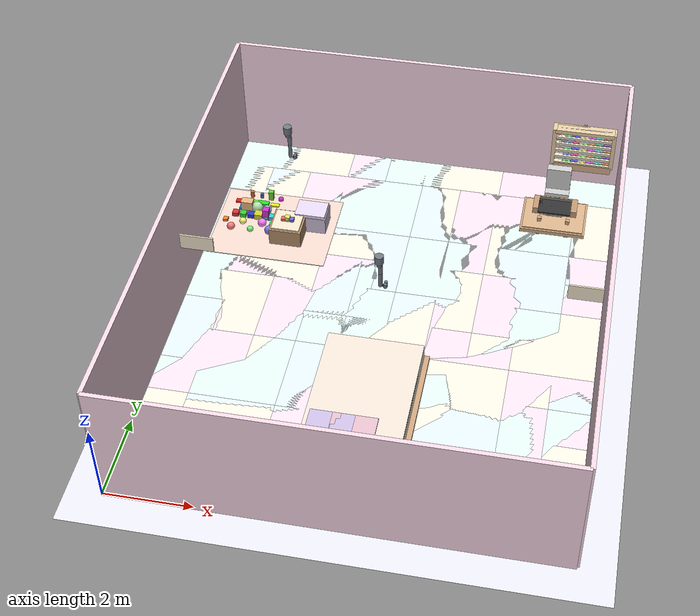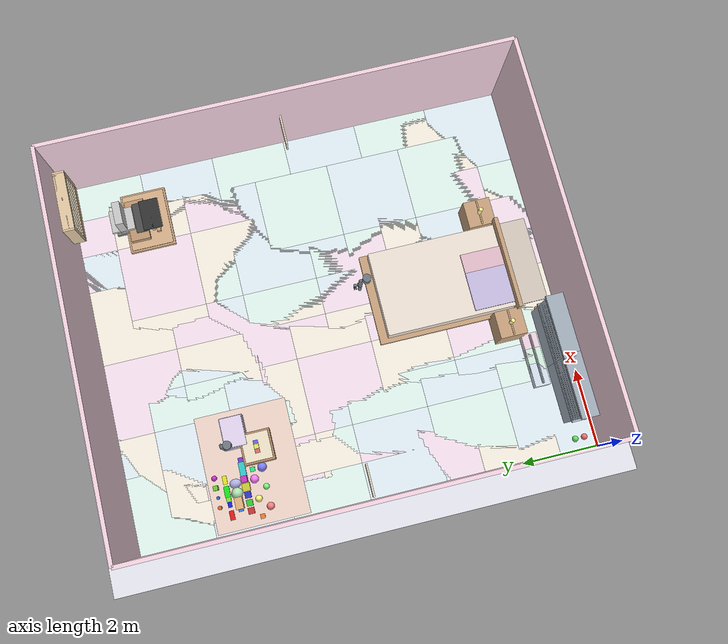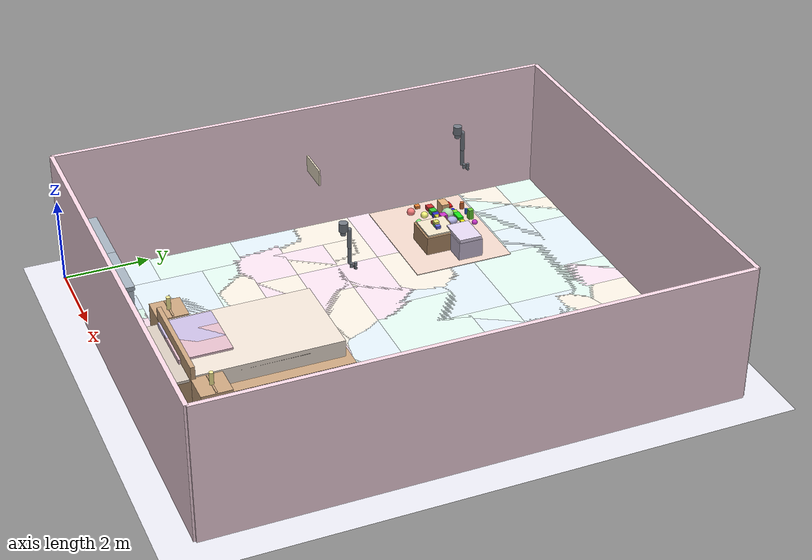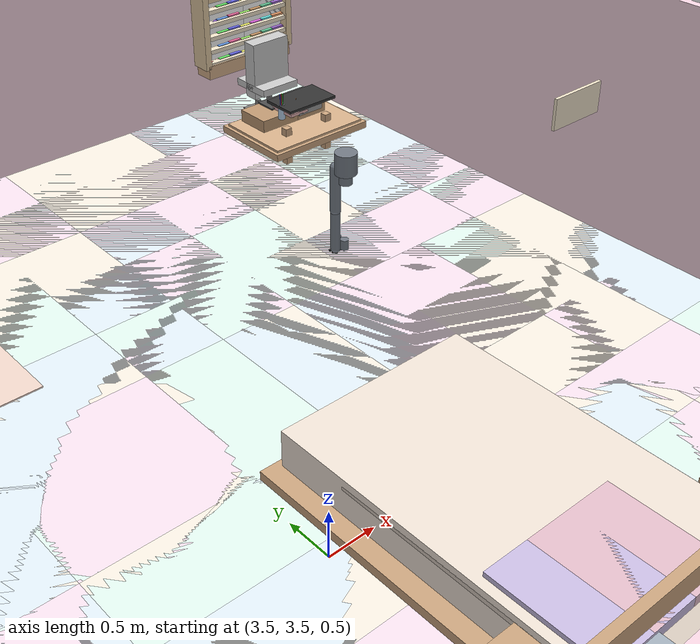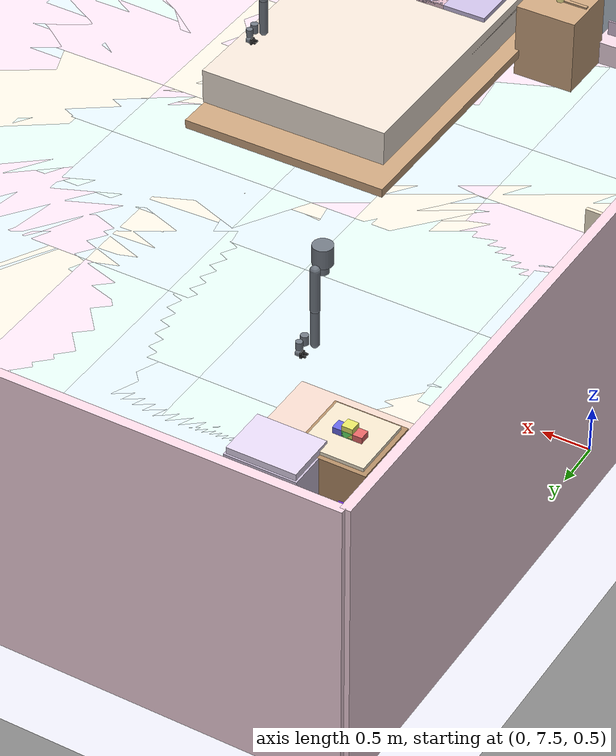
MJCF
<mujoco model="kids_room">
  <compiler angle="degree" inertiafromgeom="true" meshdir="../assets/meshes"/>
  <option gravity="0 0 -9.81" integrator="RK4"/>
  <default>
    <default class="floor"><geom friction="1 0.005 0.0001" rgba="0.92 0.92 0.96 1"/></default>
    <default class="wall"><geom type="box" rgba="0.98 0.85 0.9 1"/></default>
    <default class="ceiling"><geom type="box" rgba="0.93 0.93 0.95 1"/></default>
    <default class="furniture"><geom friction="0.8 0.03 0.001" rgba="0.65 0.65 0.68 1"/></default>
    <default class="wood"><geom friction="0.8 0.03 0.001" rgba="0.95 0.9 0.8 1"/></default>
    <default class="metal"><geom friction="0.9 0.02 0.001" rgba="0.55 0.55 0.6 1"/></default>
    <default class="plastic"><geom friction="0.6 0.02 0.001" rgba="0.7 0.7 0.8 1"/></default>
    <default class="toy"><geom type="sphere" size="0.08" friction="0.6 0.01 0.001" rgba="0.9 0.4 0.4 1"/></default>
    <default class="lamp"><geom rgba="1 1 0.75 1"/></default>
    <default class="arm"><geom rgba="0.45 0.48 0.52 1" friction="0.9 0.02 0.001"/></default>
  </default>
  <worldbody>
    <!-- Warm and soft lighting for children's room -->
    <!-- Ambient light -->
    <light name="ambient_light" pos="5 6 4" dir="0 0 -1" diffuse="0.4 0.4 0.35" specular="0.1 0.1 0.1"/>
    <!-- Main ceiling light -->
    <light name="ceiling_light" pos="5 6 4" dir="0 0 -1" diffuse="0.6 0.55 0.5" specular="0.2 0.2 0.2" castshadow="false"/>
    <!-- Desk lamp -->
    <light name="desk_lamp" type="spot" pos="8.5 9.5 1.2" dir="0 -1 0" diffuse="1.0 0.9 0.8" specular="0.2 0.2 0.2" attenuation="0.5 0.1 0.05"/>
    <body name="room">
      <camera name="top_view" pos="5 8.5 2.5" euler="-45 0 0" mode="fixed"/>
      <geom name="floor_plane" class="floor" type="plane" pos="0 0 0" size="40 40 0.1"/>
      <geom name="floor_visual" class="floor" type="box" pos="5 6 0" size="5 6 0.03" rgba="0.95 0.95 0.97 1"/>
      <!-- Decorative floor pattern - full room coverage -->
      <!-- Row 1 (y=1) -->
      <geom class="floor" type="box" pos="1 1 0.031" size="1 1 0.001" rgba="0.9 0.95 0.98 1"/>
      <geom class="floor" type="box" pos="2 1 0.031" size="1 1 0.001" rgba="0.98 0.9 0.95 1"/>
      <geom class="floor" type="box" pos="3 1 0.031" size="1 1 0.001" rgba="0.9 0.98 0.95 1"/>
      <geom class="floor" type="box" pos="4 1 0.031" size="1 1 0.001" rgba="0.98 0.95 0.9 1"/>
      <geom class="floor" type="box" pos="5 1 0.031" size="1 1 0.001" rgba="0.9 0.95 0.98 1"/>
      <geom class="floor" type="box" pos="6 1 0.031" size="1 1 0.001" rgba="0.98 0.9 0.95 1"/>
      <geom class="floor" type="box" pos="7 1 0.031" size="1 1 0.001" rgba="0.9 0.98 0.95 1"/>
      <geom class="floor" type="box" pos="8 1 0.031" size="1 1 0.001" rgba="0.98 0.95 0.9 1"/>
      <geom class="floor" type="box" pos="9 1 0.031" size="1 1 0.001" rgba="0.9 0.95 0.98 1"/>

      <!-- Row 2 (y=2) -->
      <geom class="floor" type="box" pos="1 2 0.031" size="1 1 0.001" rgba="0.98 0.95 0.9 1"/>
      <geom class="floor" type="box" pos="2 2 0.031" size="1 1 0.001" rgba="0.9 0.95 0.98 1"/>
      <geom class="floor" type="box" pos="3 2 0.031" size="1 1 0.001" rgba="0.98 0.9 0.95 1"/>
      <geom class="floor" type="box" pos="4 2 0.031" size="1 1 0.001" rgba="0.9 0.98 0.95 1"/>
      <geom class="floor" type="box" pos="5 2 0.031" size="1 1 0.001" rgba="0.98 0.95 0.9 1"/>
      <geom class="floor" type="box" pos="6 2 0.031" size="1 1 0.001" rgba="0.9 0.95 0.98 1"/>
      <geom class="floor" type="box" pos="7 2 0.031" size="1 1 0.001" rgba="0.98 0.9 0.95 1"/>
      <geom class="floor" type="box" pos="8 2 0.031" size="1 1 0.001" rgba="0.9 0.98 0.95 1"/>
      <geom class="floor" type="box" pos="9 2 0.031" size="1 1 0.001" rgba="0.98 0.95 0.9 1"/>

      <!-- Row 3 (y=3) -->
      <geom class="floor" type="box" pos="1 3 0.031" size="1 1 0.001" rgba="0.9 0.98 0.95 1"/>
      <geom class="floor" type="box" pos="2 3 0.031" size="1 1 0.001" rgba="0.98 0.95 0.9 1"/>
      <geom class="floor" type="box" pos="3 3 0.031" size="1 1 0.001" rgba="0.9 0.95 0.98 1"/>
      <geom class="floor" type="box" pos="4 3 0.031" size="1 1 0.001" rgba="0.98 0.9 0.95 1"/>
      <geom class="floor" type="box" pos="5 3 0.031" size="1 1 0.001" rgba="0.9 0.98 0.95 1"/>
      <geom class="floor" type="box" pos="6 3 0.031" size="1 1 0.001" rgba="0.98 0.95 0.9 1"/>
      <geom class="floor" type="box" pos="7 3 0.031" size="1 1 0.001" rgba="0.9 0.95 0.98 1"/>
      <geom class="floor" type="box" pos="8 3 0.031" size="1 1 0.001" rgba="0.98 0.9 0.95 1"/>
      <geom class="floor" type="box" pos="9 3 0.031" size="1 1 0.001" rgba="0.9 0.98 0.95 1"/>

      <!-- Row 4 (y=4) -->
      <geom class="floor" type="box" pos="1 4 0.031" size="1 1 0.001" rgba="0.98 0.9 0.95 1"/>
      <geom class="floor" type="box" pos="2 4 0.031" size="1 1 0.001" rgba="0.9 0.98 0.95 1"/>
      <geom class="floor" type="box" pos="3 4 0.031" size="1 1 0.001" rgba="0.98 0.95 0.9 1"/>
      <geom class="floor" type="box" pos="4 4 0.031" size="1 1 0.001" rgba="0.9 0.95 0.98 1"/>
      <geom class="floor" type="box" pos="5 4 0.031" size="1 1 0.001" rgba="0.98 0.9 0.95 1"/>
      <geom class="floor" type="box" pos="6 4 0.031" size="1 1 0.001" rgba="0.9 0.98 0.95 1"/>
      <geom class="floor" type="box" pos="7 4 0.031" size="1 1 0.001" rgba="0.98 0.95 0.9 1"/>
      <geom class="floor" type="box" pos="8 4 0.031" size="1 1 0.001" rgba="0.9 0.95 0.98 1"/>
      <geom class="floor" type="box" pos="9 4 0.031" size="1 1 0.001" rgba="0.98 0.9 0.95 1"/>

      <!-- Row 5 (y=5) -->
      <geom class="floor" type="box" pos="1 5 0.031" size="1 1 0.001" rgba="0.9 0.95 0.98 1"/>
      <geom class="floor" type="box" pos="2 5 0.031" size="1 1 0.001" rgba="0.98 0.9 0.95 1"/>
      <geom class="floor" type="box" pos="3 5 0.031" size="1 1 0.001" rgba="0.9 0.98 0.95 1"/>
      <geom class="floor" type="box" pos="4 5 0.031" size="1 1 0.001" rgba="0.98 0.95 0.9 1"/>
      <geom class="floor" type="box" pos="5 5 0.031" size="1 1 0.001" rgba="0.9 0.95 0.98 1"/>
      <geom class="floor" type="box" pos="6 5 0.031" size="1 1 0.001" rgba="0.98 0.9 0.95 1"/>
      <geom class="floor" type="box" pos="7 5 0.031" size="1 1 0.001" rgba="0.9 0.98 0.95 1"/>
      <geom class="floor" type="box" pos="8 5 0.031" size="1 1 0.001" rgba="0.98 0.95 0.9 1"/>
      <geom class="floor" type="box" pos="9 5 0.031" size="1 1 0.001" rgba="0.9 0.95 0.98 1"/>

      <!-- Row 6 (y=6) -->
      <geom class="floor" type="box" pos="1 6 0.031" size="1 1 0.001" rgba="0.98 0.95 0.9 1"/>
      <geom class="floor" type="box" pos="2 6 0.031" size="1 1 0.001" rgba="0.9 0.95 0.98 1"/>
      <geom class="floor" type="box" pos="3 6 0.031" size="1 1 0.001" rgba="0.98 0.9 0.95 1"/>
      <geom class="floor" type="box" pos="4 6 0.031" size="1 1 0.001" rgba="0.9 0.98 0.95 1"/>
      <geom class="floor" type="box" pos="5 6 0.031" size="1 1 0.001" rgba="0.98 0.95 0.9 1"/>
      <geom class="floor" type="box" pos="6 6 0.031" size="1 1 0.001" rgba="0.9 0.95 0.98 1"/>
      <geom class="floor" type="box" pos="7 6 0.031" size="1 1 0.001" rgba="0.98 0.9 0.95 1"/>
      <geom class="floor" type="box" pos="8 6 0.031" size="1 1 0.001" rgba="0.9 0.98 0.95 1"/>
      <geom class="floor" type="box" pos="9 6 0.031" size="1 1 0.001" rgba="0.98 0.95 0.9 1"/>

      <!-- Row 7 (y=7) -->
      <geom class="floor" type="box" pos="1 7 0.031" size="1 1 0.001" rgba="0.9 0.98 0.95 1"/>
      <geom class="floor" type="box" pos="2 7 0.031" size="1 1 0.001" rgba="0.98 0.95 0.9 1"/>
      <geom class="floor" type="box" pos="3 7 0.031" size="1 1 0.001" rgba="0.9 0.95 0.98 1"/>
      <geom class="floor" type="box" pos="4 7 0.031" size="1 1 0.001" rgba="0.98 0.9 0.95 1"/>
      <geom class="floor" type="box" pos="5 7 0.031" size="1 1 0.001" rgba="0.9 0.98 0.95 1"/>
      <geom class="floor" type="box" pos="6 7 0.031" size="1 1 0.001" rgba="0.98 0.95 0.9 1"/>
      <geom class="floor" type="box" pos="7 7 0.031" size="1 1 0.001" rgba="0.9 0.95 0.98 1"/>
      <geom class="floor" type="box" pos="8 7 0.031" size="1 1 0.001" rgba="0.98 0.9 0.95 1"/>
      <geom class="floor" type="box" pos="9 7 0.031" size="1 1 0.001" rgba="0.9 0.98 0.95 1"/>

      <!-- Row 8 (y=8) -->
      <geom class="floor" type="box" pos="1 8 0.031" size="1 1 0.001" rgba="0.98 0.9 0.95 1"/>
      <geom class="floor" type="box" pos="2 8 0.031" size="1 1 0.001" rgba="0.9 0.98 0.95 1"/>
      <geom class="floor" type="box" pos="3 8 0.031" size="1 1 0.001" rgba="0.98 0.95 0.9 1"/>
      <geom class="floor" type="box" pos="4 8 0.031" size="1 1 0.001" rgba="0.9 0.95 0.98 1"/>
      <geom class="floor" type="box" pos="5 8 0.031" size="1 1 0.001" rgba="0.98 0.9 0.95 1"/>
      <geom class="floor" type="box" pos="6 8 0.031" size="1 1 0.001" rgba="0.9 0.98 0.95 1"/>
      <geom class="floor" type="box" pos="7 8 0.031" size="1 1 0.001" rgba="0.98 0.95 0.9 1"/>
      <geom class="floor" type="box" pos="8 8 0.031" size="1 1 0.001" rgba="0.9 0.95 0.98 1"/>
      <geom class="floor" type="box" pos="9 8 0.031" size="1 1 0.001" rgba="0.98 0.9 0.95 1"/>

      <!-- Row 9 (y=9) -->
      <geom class="floor" type="box" pos="1 9 0.031" size="1 1 0.001" rgba="0.9 0.95 0.98 1"/>
      <geom class="floor" type="box" pos="2 9 0.031" size="1 1 0.001" rgba="0.98 0.9 0.95 1"/>
      <geom class="floor" type="box" pos="3 9 0.031" size="1 1 0.001" rgba="0.9 0.98 0.95 1"/>
      <geom class="floor" type="box" pos="4 9 0.031" size="1 1 0.001" rgba="0.98 0.95 0.9 1"/>
      <geom class="floor" type="box" pos="5 9 0.031" size="1 1 0.001" rgba="0.9 0.95 0.98 1"/>
      <geom class="floor" type="box" pos="6 9 0.031" size="1 1 0.001" rgba="0.98 0.9 0.95 1"/>
      <geom class="floor" type="box" pos="7 9 0.031" size="1 1 0.001" rgba="0.9 0.98 0.95 1"/>
      <geom class="floor" type="box" pos="8 9 0.031" size="1 1 0.001" rgba="0.98 0.95 0.9 1"/>
      <geom class="floor" type="box" pos="9 9 0.031" size="1 1 0.001" rgba="0.9 0.95 0.98 1"/>

      <!-- Row 10 (y=10) -->
      <geom class="floor" type="box" pos="1 10 0.031" size="1 1 0.001" rgba="0.98 0.95 0.9 1"/>
      <geom class="floor" type="box" pos="2 10 0.031" size="1 1 0.001" rgba="0.9 0.95 0.98 1"/>
      <geom class="floor" type="box" pos="3 10 0.031" size="1 1 0.001" rgba="0.98 0.9 0.95 1"/>
      <geom class="floor" type="box" pos="4 10 0.031" size="1 1 0.001" rgba="0.9 0.98 0.95 1"/>
      <geom class="floor" type="box" pos="5 10 0.031" size="1 1 0.001" rgba="0.98 0.95 0.9 1"/>
      <geom class="floor" type="box" pos="6 10 0.031" size="1 1 0.001" rgba="0.9 0.95 0.98 1"/>
      <geom class="floor" type="box" pos="7 10 0.031" size="1 1 0.001" rgba="0.98 0.9 0.95 1"/>
      <geom class="floor" type="box" pos="8 10 0.031" size="1 1 0.001" rgba="0.9 0.98 0.95 1"/>
      <geom class="floor" type="box" pos="9 10 0.031" size="1 1 0.001" rgba="0.98 0.95 0.9 1"/>

      <!-- Row 11 (y=11) -->
      <geom class="floor" type="box" pos="1 11 0.031" size="1 1 0.001" rgba="0.9 0.98 0.95 1"/>
      <geom class="floor" type="box" pos="2 11 0.031" size="1 1 0.001" rgba="0.98 0.95 0.9 1"/>
      <geom class="floor" type="box" pos="3 11 0.031" size="1 1 0.001" rgba="0.9 0.95 0.98 1"/>
      <geom class="floor" type="box" pos="4 11 0.031" size="1 1 0.001" rgba="0.98 0.9 0.95 1"/>
      <geom class="floor" type="box" pos="5 11 0.031" size="1 1 0.001" rgba="0.9 0.98 0.95 1"/>
      <geom class="floor" type="box" pos="6 11 0.031" size="1 1 0.001" rgba="0.98 0.95 0.9 1"/>
      <geom class="floor" type="box" pos="7 11 0.031" size="1 1 0.001" rgba="0.9 0.95 0.98 1"/>
      <geom class="floor" type="box" pos="8 11 0.031" size="1 1 0.001" rgba="0.98 0.9 0.95 1"/>
      <geom class="floor" type="box" pos="9 11 0.031" size="1 1 0.001" rgba="0.9 0.98 0.95 1"/>
      <geom name="north_wall" class="wall" pos="5 0 1.6" size="5 0.05 1.6" rgba="0.98 0.85 0.9 1"/>
      <geom name="south_wall" class="wall" pos="5 12 1.6" size="5 0.05 1.6" rgba="0.98 0.85 0.9 1"/>
      <geom name="west_wall" class="wall" pos="0 6 1.6" size="0.05 6 1.6" rgba="0.98 0.85 0.9 1"/>
      <geom name="east_wall" class="wall" pos="10 6 1.6" size="0.05 6 1.6" rgba="0.98 0.85 0.9 1"/>
      <!-- Windows -->
      <geom name="north_window" type="box" pos="5 0 2.0" size="1.5 0.02 0.8" rgba="0.3 0.6 0.9 0.6"/>
      <geom name="north_window_frame1" class="metal" type="box" pos="4.25 0 2.0" size="0.02 0.03 0.85"/>
      <geom name="north_window_frame2" class="metal" type="box" pos="5.75 0 2.0" size="0.02 0.03 0.85"/>
      <geom name="north_window_frame3" class="metal" type="box" pos="5 0 1.6" size="1.55 0.03 0.02"/>
      <geom name="north_window_frame4" class="metal" type="box" pos="5 0 2.4" size="1.55 0.03 0.02"/>
      <!-- Wall decorations -->
      <geom name="painting1" type="box" pos="3 0 2.2" size="0.6 0.01 0.4" rgba="0.9 0.7 0.5 1"/>
      <geom name="painting2" type="box" pos="7 0 2.2" size="0.6 0.01 0.4" rgba="0.5 0.7 0.9 1"/>
      <geom name="painting3" type="box" pos="3 12 2.2" size="0.6 0.01 0.4" rgba="0.7 0.9 0.5 1"/>
      <geom name="painting4" type="box" pos="7 12 2.2" size="0.6 0.01 0.4" rgba="0.9 0.5 0.9 1"/>
      <geom name="shelf1" class="wood" type="box" pos="3 12 1.8" size="0.4 0.02 0.2"/>
      <geom name="shelf2" class="wood" type="box" pos="7 12 1.8" size="0.4 0.02 0.2"/>
      <geom name="shelf3" class="wood" type="box" pos="0.5 6 1.8" size="0.4 0.02 0.2"/>
      <geom name="shelf4" class="wood" type="box" pos="9.5 6 1.8" size="0.4 0.02 0.2"/>
    </body>
    <body name="rest_area">
      <!-- Redesigned rest area with new bed and furniture layout -->
      <!-- Update rug to match new layout -->
      <geom name="rest_rug" type="box" pos="5 4 0.01" size="2.5 3 0.01" rgba="0.85 0.92 0.98 1"/>

      <!-- New bed from warehouse: Modern bed with mattress and pillows -->
      <body name="bed" pos="5 3 0.3" euler="0 0 0">
        <!-- Bed frame -->
        <geom class="wood" type="box" size="1.2 1.8 0.05" pos="0 0 0" rgba="0.8 0.65 0.5 1"/>
        <!-- Headboard -->
        <geom class="wood" type="box" size="1.2 0.05 0.6" pos="0 -1.8 0.3" rgba="0.8 0.65 0.5 1"/>
        <!-- Mattress -->
        <geom type="box" size="1.1 1.7 0.2" pos="0 -0.1 0.4" rgba="0.95 0.9 0.85 1"/>
        <!-- Pillows -->
        <geom type="box" size="0.5 0.6 0.1" pos="0 -1.3 0.55" rgba="0.9 0.75 0.8 1"/>
        <geom type="box" size="0.5 0.6 0.1" pos="-0.5 -1.3 0.55" rgba="0.8 0.75 0.9 1"/>
        <!-- Blanket -->
        <geom type="box" size="1.1 1.7 0.03" pos="0 -0.9 0.51" rgba="0.85 0.8 0.75 1"/>
      </body>

      <!-- New bedside cabinets from warehouse -->
      <body name="bedside_cabinet_left" pos="3.5 1.5 0.3">
        <geom class="wood" type="box" size="0.35 0.35 0.6" rgba="0.8 0.65 0.5 1"/>
        <!-- Drawers -->
        <geom class="wood" type="box" size="0.3 0.3 0.15" pos="0 0 0.175" rgba="0.75 0.6 0.45 1"/>
        <geom class="wood" type="box" size="0.3 0.3 0.15" pos="0 0 0.425" rgba="0.75 0.6 0.45 1"/>
        <geom class="wood" type="box" size="0.32 0.02 0.32" pos="0 0 0.3" rgba="0.8 0.65 0.5 1"/>
        <!-- Drawer handles -->
        <geom class="metal" type="cylinder" size="0.015 0.05" pos="0.15 0 0.175" rgba="0.7 0.7 0.75 1"/>
        <geom class="metal" type="cylinder" size="0.015 0.05" pos="0.15 0 0.425" rgba="0.7 0.7 0.75 1"/>
        <!-- Lamp on cabinet -->
        <geom class="lamp" type="cylinder" size="0.05 0.25" pos="0 0 0.65" rgba="1 0.95 0.6 1"/>
      </body>

      <body name="bedside_cabinet_right" pos="6.5 1.5 0.3">
        <geom class="wood" type="box" size="0.35 0.35 0.6" rgba="0.8 0.65 0.5 1"/>
        <!-- Drawers -->
        <geom class="wood" type="box" size="0.3 0.3 0.15" pos="0 0 0.175" rgba="0.75 0.6 0.45 1"/>
        <geom class="wood" type="box" size="0.3 0.3 0.15" pos="0 0 0.425" rgba="0.75 0.6 0.45 1"/>
        <geom class="wood" type="box" size="0.32 0.02 0.32" pos="0 0 0.3" rgba="0.8 0.65 0.5 1"/>
        <!-- Drawer handles -->
        <geom class="metal" type="cylinder" size="0.015 0.05" pos="0.15 0 0.175" rgba="0.7 0.7 0.75 1"/>
        <geom class="metal" type="cylinder" size="0.015 0.05" pos="0.15 0 0.425" rgba="0.7 0.7 0.75 1"/>
        <!-- Lamp on cabinet -->
        <geom class="lamp" type="cylinder" size="0.05 0.25" pos="0 0 0.65" rgba="1 0.95 0.6 1"/>
      </body>

    </body>

    <body name="study_area">
      <geom name="study_floor" type="box" pos="8.5 10 0.01" size="1.5 2 0.01" rgba="0.9 0.96 0.9 1"/>
      <!-- New desk from warehouse: Modern wooden desk -->
      <body name="desk" pos="8.5 10 0.375" euler="0 0 0">
        <geom class="wood" type="box" size="0.8 0.6 0.05" pos="0 0 0" rgba="0.8 0.65 0.5 1"/>
        <!-- Desk top -->
        <geom class="wood" type="box" size="0.75 0.55 0.02" pos="0 0 0.06" rgba="0.85 0.7 0.55 1"/>
        <!-- Desk legs -->
        <geom class="wood" type="box" size="0.05 0.05 0.375" pos="0.35 0.25 -0.1875" rgba="0.8 0.65 0.5 1"/>
        <geom class="wood" type="box" size="0.05 0.05 0.375" pos="-0.35 0.25 -0.1875" rgba="0.8 0.65 0.5 1"/>
        <geom class="wood" type="box" size="0.05 0.05 0.375" pos="0.35 -0.25 -0.1875" rgba="0.8 0.65 0.5 1"/>
        <geom class="wood" type="box" size="0.05 0.05 0.375" pos="-0.35 -0.25 -0.1875" rgba="0.8 0.65 0.5 1"/>
        <!-- Drawers -->
        <geom class="wood" type="box" size="0.3 0.25 0.15" pos="-0.25 0.25 0.1" rgba="0.75 0.6 0.45 1"/>
        <geom class="wood" type="box" size="0.3 0.25 0.15" pos="0.25 0.25 0.1" rgba="0.75 0.6 0.45 1"/>
        <!-- Drawer handles -->
        <geom class="metal" type="cylinder" size="0.015 0.05" pos="-0.1 0.25 0.1" rgba="0.7 0.7 0.75 1"/>
        <geom class="metal" type="cylinder" size="0.015 0.05" pos="0.1 0.25 0.1" rgba="0.7 0.7 0.75 1"/>
        <!-- Monitor stand -->
        <geom class="plastic" type="box" size="0.2 0.2 0.05" pos="0 -0.15 0.4" rgba="0.6 0.6 0.6 1"/>
        <!-- Monitor -->
        <geom class="plastic" type="box" size="0.4 0.25 0.02" pos="0 -0.15 0.47" rgba="0.2 0.2 0.2 1"/>
        <!-- Keyboard -->
        <geom class="plastic" type="box" size="0.4 0.15 0.01" pos="0 0.15 0.38" rgba="0.3 0.3 0.3 1"/>
        <!-- Mouse -->
        <geom class="plastic" type="box" size="0.1 0.05 0.01" pos="0.25 0.05 0.38" rgba="0.3 0.3 0.3 1"/>

        <!-- Desk文具 from warehouse -->
        <!-- Pen holder with pens -->
        <geom class="plastic" type="cylinder" size="0.05 0.1" pos="-0.35 -0.15 0.39" rgba="0.7 0.8 0.9 1"/>
        <geom class="plastic" type="cylinder" size="0.008 0.15" pos="-0.35 -0.15 0.5" rgba="0.9 0.3 0.3 1"/>
        <geom class="plastic" type="cylinder" size="0.008 0.15" pos="-0.33 -0.15 0.5" rgba="0.3 0.9 0.3 1"/>
        <geom class="plastic" type="cylinder" size="0.008 0.15" pos="-0.37 -0.15 0.5" rgba="0.3 0.3 0.9 1"/>
        <!-- Notebook -->
        <geom class="plastic" type="box" size="0.15 0.2 0.02" pos="-0.2 -0.15 0.39" rgba="0.9 0.7 0.7 1"/>
        <!-- Pencil -->
        <geom class="plastic" type="cylinder" size="0.006 0.12" pos="-0.1 -0.15 0.39" rgba="0.7 0.4 0.2 1"/>
        <!-- Eraser -->
        <geom class="plastic" type="box" size="0.03 0.02 0.01" pos="-0.05 -0.15 0.39" rgba="0.9 0.9 0 1"/>
        <!-- Stapler -->
        <geom class="plastic" type="box" size="0.05 0.02 0.08" pos="0.3 -0.15 0.39" rgba="0.8 0.3 0.3 1"/>
      </body>

      <!-- New chair from warehouse: Ergonomic office chair -->
      <body name="desk_chair" pos="8.5 10.6 0.4">
        <geom class="plastic" type="box" size="0.25 0.25 0.05" pos="0 0 0" rgba="0.5 0.5 0.5 1"/>
        <!-- Chair seat -->
        <geom class="plastic" type="box" size="0.3 0.3 0.05" pos="0 0 0.45" rgba="0.8 0.8 0.8 1"/>
        <!-- Chair back -->
        <geom class="plastic" type="box" size="0.3 0.1 0.4" pos="0 0 0.7" rgba="0.8 0.8 0.8 1"/>
        <!-- Chair legs -->
        <geom class="plastic" type="box" size="0.03 0.03 0.35" pos="0.1 0.1 -0.175" rgba="0.5 0.5 0.5 1"/>
        <geom class="plastic" type="box" size="0.03 0.03 0.35" pos="-0.1 0.1 -0.175" rgba="0.5 0.5 0.5 1"/>
        <geom class="plastic" type="box" size="0.03 0.03 0.35" pos="0.1 -0.1 -0.175" rgba="0.5 0.5 0.5 1"/>
        <geom class="plastic" type="box" size="0.03 0.03 0.35" pos="-0.1 -0.1 -0.175" rgba="0.5 0.5 0.5 1"/>
      </body>

      <!-- Children's room bookshelf with glass doors -->
      <body name="bookshelf" pos="9.0 11.8 0.6">
        <!-- Main structure: width 150cm, height 120cm, depth 30cm -->
        <!-- Bottom base (10cm height) -->
        <geom class="wood" type="box" size="0.75 0.15 0.1" pos="0 0 0.1" rgba="0.85 0.7 0.55 1" mass="5"/>

        <!-- Left side panel -->
        <geom class="wood" type="box" size="0.05 0.15 0.55" pos="-0.75 0 0.7" rgba="0.9 0.8 0.65 1" mass="5"/>
        <!-- Right side panel -->
        <geom class="wood" type="box" size="0.05 0.15 0.55" pos="0.75 0 0.7" rgba="0.9 0.8 0.65 1" mass="5"/>
        <!-- Top panel -->
        <geom class="wood" type="box" size="0.75 0.15 0.05" pos="0 0 1.2" rgba="0.9 0.8 0.65 1" mass="3"/>
        <!-- Back panel -->
        <geom class="wood" type="box" size="0.75 0.05 0.55" pos="0 0.15 0.7" rgba="0.85 0.75 0.6 1" mass="2"/>

        <!-- 5 horizontal shelves with equal spacing (120cm height / 6 sections = 20cm per section) -->
        <!-- Shelf 1 -->
        <geom class="wood" type="box" size="0.7 0.13 0.03" pos="0 0 0.2" rgba="0.95 0.9 0.8 1" mass="2"/>
        <!-- Shelf 2 -->
        <geom class="wood" type="box" size="0.7 0.13 0.03" pos="0 0 0.4" rgba="0.95 0.9 0.8 1" mass="2"/>
        <!-- Shelf 3 -->
        <geom class="wood" type="box" size="0.7 0.13 0.03" pos="0 0 0.6" rgba="0.95 0.9 0.8 1" mass="2"/>
        <!-- Shelf 4 -->
        <geom class="wood" type="box" size="0.7 0.13 0.03" pos="0 0 0.8" rgba="0.95 0.9 0.8 1" mass="2"/>
        <!-- Shelf 5 -->
        <geom class="wood" type="box" size="0.7 0.13 0.03" pos="0 0 1.0" rgba="0.95 0.9 0.8 1" mass="2"/>

        <!-- Left glass door -->
        <body name="left_door" pos="-0.375 0 0.7">
          <joint name="left_door_joint" type="hinge" axis="0 0 1" range="0 90" damping="0.5"/>
          <!-- Door frame -->
          <geom class="wood" type="box" size="0.375 0.02 0.55" pos="0 0 0" rgba="1 1 1 1" mass="1"/>
          <!-- Glass panel -->
          <geom type="box" size="0.35 0.01 0.53" pos="0 -0.01 0" rgba="0.8 0.9 1 0.3" mass="0.5"/>
          <!-- Door handle -->
          <geom class="metal" type="cylinder" size="0.01 0.02" pos="0.35 -0.02 0.7" rgba="0.7 0.7 0.7 1" mass="0.1"/>
        </body>

        <!-- Right glass door -->
        <body name="right_door" pos="0.375 0 0.7">
          <joint name="right_door_joint" type="hinge" axis="0 0 1" range="-90 0" damping="0.5"/>
          <!-- Door frame -->
          <geom class="wood" type="box" size="0.375 0.02 0.55" pos="0 0 0" rgba="1 1 1 1" mass="1"/>
          <!-- Glass panel -->
          <geom type="box" size="0.35 0.01 0.53" pos="0 -0.01 0" rgba="0.8 0.9 1 0.3" mass="0.5"/>
          <!-- Door handle -->
          <geom class="metal" type="cylinder" size="0.01 0.02" pos="-0.35 -0.02 0.7" rgba="0.7 0.7 0.7 1" mass="0.1"/>
        </body>

        <!-- Books on shelves (realistic sizes: 20cm x 15cm x 2-5cm) -->
        <!-- Shelf 1 books -->
        <geom class="plastic" name="book1" type="box" size="0.1 0.075 0.02" pos="-0.6 0 0.21" rgba="0.9 0.4 0.4 1" mass="0.2"/>
        <geom class="plastic" name="book2" type="box" size="0.1 0.075 0.03" pos="-0.4 0 0.21" rgba="0.4 0.9 0.4 1" mass="0.3"/>
        <geom class="plastic" name="book3" type="box" size="0.1 0.075 0.04" pos="-0.2 0 0.21" rgba="0.4 0.4 0.9 1" mass="0.4"/>
        <geom class="plastic" name="book4" type="box" size="0.1 0.075 0.025" pos="0 0 0.21" rgba="0.9 0.9 0.4 1" mass="0.25"/>
        <geom class="plastic" name="book5" type="box" size="0.1 0.075 0.035" pos="0.2 0 0.21" rgba="0.9 0.4 0.9 1" mass="0.35"/>
        <geom class="plastic" name="book6" type="box" size="0.1 0.075 0.045" pos="0.4 0 0.21" rgba="0.4 0.9 0.9 1" mass="0.45"/>
        <geom class="plastic" name="book7" type="box" size="0.1 0.075 0.05" pos="0.6 0 0.21" rgba="0.9 0.6 0.4 1" mass="0.5"/>

        <!-- Shelf 2 books -->
        <geom class="plastic" name="book8" type="box" size="0.1 0.075 0.02" pos="-0.6 0 0.41" rgba="0.6 0.4 0.9 1" mass="0.2"/>
        <geom class="plastic" name="book9" type="box" size="0.1 0.075 0.03" pos="-0.4 0 0.41" rgba="0.4 0.6 0.9 1" mass="0.3"/>
        <geom class="plastic" name="book10" type="box" size="0.1 0.075 0.04" pos="-0.2 0 0.41" rgba="0.9 0.4 0.6 1" mass="0.4"/>
        <geom class="plastic" name="book11" type="box" size="0.1 0.075 0.025" pos="0 0 0.41" rgba="0.6 0.9 0.4 1" mass="0.25"/>
        <geom class="plastic" name="book12" type="box" size="0.1 0.075 0.035" pos="0.2 0 0.41" rgba="0.8 0.6 0.4 1" mass="0.35"/>
        <geom class="plastic" name="book13" type="box" size="0.1 0.075 0.045" pos="0.4 0 0.41" rgba="0.4 0.8 0.6 1" mass="0.45"/>
        <geom class="plastic" name="book14" type="box" size="0.1 0.075 0.05" pos="0.6 0 0.41" rgba="0.6 0.4 0.8 1" mass="0.5"/>

        <!-- Shelf 3 books -->
        <geom class="plastic" name="book15" type="box" size="0.1 0.075 0.02" pos="-0.6 0 0.61" rgba="0.9 0.4 0.4 1" mass="0.2"/>
        <geom class="plastic" name="book16" type="box" size="0.1 0.075 0.03" pos="-0.4 0 0.61" rgba="0.4 0.9 0.4 1" mass="0.3"/>
        <geom class="plastic" name="book17" type="box" size="0.1 0.075 0.04" pos="-0.2 0 0.61" rgba="0.4 0.4 0.9 1" mass="0.4"/>
        <geom class="plastic" name="book18" type="box" size="0.1 0.075 0.025" pos="0 0 0.61" rgba="0.9 0.9 0.4 1" mass="0.25"/>
        <geom class="plastic" name="book19" type="box" size="0.1 0.075 0.035" pos="0.2 0 0.61" rgba="0.9 0.4 0.9 1" mass="0.35"/>
        <geom class="plastic" name="book20" type="box" size="0.1 0.075 0.045" pos="0.4 0 0.61" rgba="0.4 0.9 0.9 1" mass="0.45"/>
        <geom class="plastic" name="book21" type="box" size="0.1 0.075 0.05" pos="0.6 0 0.61" rgba="0.9 0.6 0.4 1" mass="0.5"/>

        <!-- Shelf 4 books -->
        <geom class="plastic" name="book22" type="box" size="0.1 0.075 0.02" pos="-0.6 0 0.81" rgba="0.6 0.4 0.9 1" mass="0.2"/>
        <geom class="plastic" name="book23" type="box" size="0.1 0.075 0.03" pos="-0.4 0 0.81" rgba="0.4 0.6 0.9 1" mass="0.3"/>
        <geom class="plastic" name="book24" type="box" size="0.1 0.075 0.04" pos="-0.2 0 0.81" rgba="0.9 0.4 0.6 1" mass="0.4"/>
        <geom class="plastic" name="book25" type="box" size="0.1 0.075 0.025" pos="0 0 0.81" rgba="0.6 0.9 0.4 1" mass="0.25"/>
        <geom class="plastic" name="book26" type="box" size="0.1 0.075 0.035" pos="0.2 0 0.81" rgba="0.8 0.6 0.4 1" mass="0.35"/>
        <geom class="plastic" name="book27" type="box" size="0.1 0.075 0.045" pos="0.4 0 0.81" rgba="0.4 0.8 0.6 1" mass="0.45"/>
        <geom class="plastic" name="book28" type="box" size="0.1 0.075 0.05" pos="0.6 0 0.81" rgba="0.6 0.4 0.8 1" mass="0.5"/>

        <!-- Shelf 5 books -->
        <geom class="plastic" name="book29" type="box" size="0.1 0.075 0.02" pos="-0.6 0 1.01" rgba="0.9 0.4 0.4 1" mass="0.2"/>
        <geom class="plastic" name="book30" type="box" size="0.1 0.075 0.03" pos="-0.4 0 1.01" rgba="0.4 0.9 0.4 1" mass="0.3"/>
        <geom class="plastic" name="book31" type="box" size="0.1 0.075 0.04" pos="-0.2 0 1.01" rgba="0.4 0.4 0.9 1" mass="0.4"/>
        <geom class="plastic" name="book32" type="box" size="0.1 0.075 0.025" pos="0 0 1.01" rgba="0.9 0.9 0.4 1" mass="0.25"/>
        <geom class="plastic" name="book33" type="box" size="0.1 0.075 0.035" pos="0.2 0 1.01" rgba="0.9 0.4 0.9 1" mass="0.35"/>
        <geom class="plastic" name="book34" type="box" size="0.1 0.075 0.045" pos="0.4 0 1.01" rgba="0.4 0.9 0.9 1" mass="0.45"/>
        <geom class="plastic" name="book35" type="box" size="0.1 0.075 0.05" pos="0.6 0 1.01" rgba="0.9 0.6 0.4 1" mass="0.5"/>
      </body>
    </body>

    <body name="storage_area">
      <geom name="storage_floor" type="box" pos="2 1.5 0.01" size="2 1.5 0.01" rgba="0.96 0.94 0.9 1"/>

      <body name="toy_rack_1" pos="1.5 0.5 0.9">
        <geom class="metal" type="box" size="0.75 0.2 0.9" rgba="0.7 0.75 0.8 1"/>
        <!-- Enhanced frame -->
        <geom class="metal" type="box" size="0.8 0.22 0.05" pos="0 0 0" rgba="0.65 0.7 0.75 1"/>
        <geom class="metal" type="box" size="0.8 0.22 0.05" pos="0 0 0.9" rgba="0.65 0.7 0.75 1"/>
        <!-- Additional shelves -->
        <geom class="plastic" type="box" size="0.7 0.18 0.15" pos="0 0 0.15" rgba="0.8 0.9 0.8 0.8"/>
        <geom class="plastic" type="box" size="0.7 0.18 0.15" pos="0 0 0.35" rgba="0.9 0.8 0.8 0.8"/>
        <geom class="plastic" type="box" size="0.7 0.18 0.15" pos="0 0 0.55" rgba="0.8 0.8 0.9 0.8"/>
        <geom class="plastic" type="box" size="0.7 0.18 0.15" pos="0 0 0.75" rgba="0.9 0.9 0.8 0.8"/>
        <!-- Decorative edges -->
        <geom class="metal" type="box" size="0.72 0.2 0.01" pos="0 0 0.15" rgba="0.6 0.65 0.7 1"/>
        <geom class="metal" type="box" size="0.72 0.2 0.01" pos="0 0 0.35" rgba="0.6 0.65 0.7 1"/>
        <geom class="metal" type="box" size="0.72 0.2 0.01" pos="0 0 0.55" rgba="0.6 0.65 0.7 1"/>
        <geom class="metal" type="box" size="0.72 0.2 0.01" pos="0 0 0.75" rgba="0.6 0.65 0.7 1"/>
        <!-- Decorative corner caps -->
        <geom class="plastic" type="sphere" size="0.03" pos="-0.38 0.11 0" rgba="0.9 0.4 0.4 1"/>
        <geom class="plastic" type="sphere" size="0.03" pos="0.38 0.11 0" rgba="0.9 0.4 0.4 1"/>
        <geom class="plastic" type="sphere" size="0.03" pos="-0.38 -0.11 0" rgba="0.9 0.4 0.4 1"/>
        <geom class="plastic" type="sphere" size="0.03" pos="0.38 -0.11 0" rgba="0.9 0.4 0.4 1"/>
      </body>
      <body name="toy_rack_2" pos="3.0 0.5 0.9">
        <geom class="metal" type="box" size="0.75 0.2 0.9" rgba="0.7 0.75 0.8 1"/>
        <!-- Enhanced frame -->
        <geom class="metal" type="box" size="0.8 0.22 0.05" pos="0 0 0" rgba="0.65 0.7 0.75 1"/>
        <geom class="metal" type="box" size="0.8 0.22 0.05" pos="0 0 0.9" rgba="0.65 0.7 0.75 1"/>
        <!-- Additional shelves -->
        <geom class="plastic" type="box" size="0.7 0.18 0.15" pos="0 0 0.15" rgba="0.8 0.8 0.9 0.8"/>
        <geom class="plastic" type="box" size="0.7 0.18 0.15" pos="0 0 0.35" rgba="0.9 0.9 0.8 0.8"/>
        <geom class="plastic" type="box" size="0.7 0.18 0.15" pos="0 0 0.55" rgba="0.9 0.8 0.9 0.8"/>
        <geom class="plastic" type="box" size="0.7 0.18 0.15" pos="0 0 0.75" rgba="0.8 0.9 0.9 0.8"/>
        <!-- Decorative edges -->
        <geom class="metal" type="box" size="0.72 0.2 0.01" pos="0 0 0.15" rgba="0.6 0.65 0.7 1"/>
        <geom class="metal" type="box" size="0.72 0.2 0.01" pos="0 0 0.35" rgba="0.6 0.65 0.7 1"/>
        <geom class="metal" type="box" size="0.72 0.2 0.01" pos="0 0 0.55" rgba="0.6 0.65 0.7 1"/>
        <geom class="metal" type="box" size="0.72 0.2 0.01" pos="0 0 0.75" rgba="0.6 0.65 0.7 1"/>
        <!-- Decorative corner caps -->
        <geom class="plastic" type="sphere" size="0.03" pos="-0.38 0.11 0" rgba="0.4 0.9 0.4 1"/>
        <geom class="plastic" type="sphere" size="0.03" pos="0.38 0.11 0" rgba="0.4 0.9 0.4 1"/>
        <geom class="plastic" type="sphere" size="0.03" pos="-0.38 -0.11 0" rgba="0.4 0.9 0.4 1"/>
        <geom class="plastic" type="sphere" size="0.03" pos="0.38 -0.11 0" rgba="0.4 0.9 0.4 1"/>
      </body>
      <body name="storage_box_1" pos="2.1 1.0 0.15">
        <geom class="plastic" type="box" size="0.3 0.2 0.15" rgba="0.85 0.9 0.95 1"/>
        <geom type="box" size="0.25 0.01 0.16" pos="0 0 0.16" rgba="0.75 0.8 0.85 1"/>
      </body>
      <body name="storage_box_2" pos="2.5 1.0 0.15">
        <geom class="plastic" type="box" size="0.3 0.2 0.15" rgba="0.85 0.95 0.9 1"/>
        <geom type="box" size="0.25 0.01 0.16" pos="0 0 0.16" rgba="0.75 0.85 0.8 1"/>
      </body>
      <body name="storage_box_3" pos="2.9 1.0 0.15">
        <geom class="plastic" type="box" size="0.3 0.2 0.15" rgba="0.95 0.85 0.9 1"/>
        <geom type="box" size="0.25 0.01 0.16" pos="0 0 0.16" rgba="0.85 0.75 0.85 1"/>
      </body>

      <body name="storage_toys">
        <geom class="toy" name="st_toy_01" pos="0.3 0.3 0.08" rgba="0.95 0.45 0.45 1"/>
        <geom class="toy" name="st_toy_02" pos="1.0 0.3 0.08" rgba="0.95 0.7 0.45 1"/>
        <geom class="toy" name="st_toy_03" pos="1.7 0.3 0.08" rgba="0.45 0.6 0.95 1"/>
        <geom class="toy" name="st_toy_04" pos="2.4 0.3 0.08" rgba="0.45 0.9 0.6 1"/>
        <geom class="toy" name="st_toy_05" pos="3.1 0.3 0.08" rgba="0.85 0.45 0.95 1"/>
        <geom class="toy" name="st_toy_06" pos="3.8 0.3 0.08" rgba="0.95 0.85 0.45 1"/>
        <geom class="toy" name="st_toy_07" pos="0.3 0.54 0.08" rgba="0.4 0.9 0.4 1"/>
        <geom class="toy" name="st_toy_08" pos="1.0 0.54 0.08" rgba="0.4 0.4 0.9 1"/>
        <geom class="toy" name="st_toy_09" pos="1.7 0.54 0.08" rgba="0.9 0.9 0.4 1"/>
        <geom class="toy" name="st_toy_10" pos="2.4 0.54 0.08" rgba="0.9 0.4 0.9 1"/>
        <geom class="toy" name="st_toy_11" pos="3.1 0.54 0.08" rgba="0.4 0.9 0.9 1"/>
        <geom class="toy" name="st_toy_12" pos="3.8 0.54 0.08" rgba="0.9 0.6 0.4 1"/>
      </body>
    </body>
    <body name="play_area">
      <geom name="play_floor" type="box" pos="1.6 8.75 0.01" size="1.6 1.25 0.01" rgba="0.98 0.93 0.9 1"/>
      <body name="play_mat" pos="1.6 8.75 0.025">
        <geom type="box" size="1.5 1.2 0.025" rgba="0.95 0.85 0.8 1"/>
      </body>

      <body name="blocks_table" pos="2 8.5 0.25">
        <geom class="wood" type="box" size="0.4 0.4 0.25" rgba="0.7 0.55 0.4 1"/>
        <geom class="plastic" type="box" size="0.35 0.35 0.02" pos="0 0 0.27" rgba="0.95 0.9 0.8 1"/>
        <!-- Add some blocks -->
        <geom class="plastic" type="box" size="0.06 0.06 0.06" pos="-0.1 0 0.3" rgba="0.9 0.4 0.4 1"/>
        <geom class="plastic" type="box" size="0.06 0.06 0.06" pos="0 0 0.3" rgba="0.4 0.9 0.4 1"/>
        <geom class="plastic" type="box" size="0.06 0.06 0.06" pos="0.1 0 0.3" rgba="0.4 0.4 0.9 1"/>
        <geom class="plastic" type="box" size="0.06 0.06 0.06" pos="0 0 0.36" rgba="0.9 0.9 0.4 1"/>
      </body>
      <body name="kids_sofa" pos="2.5 9 0.25">
        <geom class="plastic" type="box" size="0.4 0.3 0.25" rgba="0.8 0.75 0.85 1"/>
        <geom class="plastic" type="box" size="0.38 0.28 0.05" pos="0 0 0.275" rgba="0.9 0.85 0.95 1"/>
      </body>

      <!-- 增加的仓库玩具模型在爬爬垫上 -->
      <body name="play_toys">
        <!-- 球类玩具 -->
        <geom name="ball_01" type="sphere" size="0.1" pos="0.5 8.5 0.1" rgba="1 0.5 0.5 1" mass="0.2"/>
        <geom name="ball_02" type="sphere" size="0.08" pos="1 8.5 0.08" rgba="0.5 1 0.5 1" mass="0.15"/>
        <geom name="ball_03" type="sphere" size="0.12" pos="1.5 8.5 0.12" rgba="0.5 0.5 1 1" mass="0.25"/>
        <geom name="ball_04" type="sphere" size="0.09" pos="0.75 8.75 0.09" rgba="1 1 0.5 1" mass="0.18"/>
        <geom name="ball_05" type="sphere" size="0.11" pos="1.25 8.75 0.11" rgba="1 0.5 1 1" mass="0.22"/>

        <!-- 积木玩具 -->
        <geom name="block_01" type="box" size="0.08 0.08 0.08" pos="0.5 9 0.08" rgba="0.8 0.2 0.2 1" mass="0.1"/>
        <geom name="block_02" type="box" size="0.08 0.08 0.08" pos="0.7 9 0.08" rgba="0.2 0.8 0.2 1" mass="0.1"/>
        <geom name="block_03" type="box" size="0.08 0.08 0.08" pos="0.9 9 0.08" rgba="0.2 0.2 0.8 1" mass="0.1"/>
        <geom name="block_04" type="box" size="0.1 0.1 0.1" pos="1.1 9 0.1" rgba="0.8 0.8 0.2 1" mass="0.15"/>
        <geom name="block_05" type="box" size="0.08 0.08 0.24" pos="1.3 9 0.12" rgba="0.8 0.2 0.8 1" mass="0.15"/>
        <geom name="block_06" type="box" size="0.24 0.08 0.08" pos="1.5 9 0.08" rgba="0.2 0.8 0.8 1" mass="0.15"/>

        <!-- 毛绒玩具 -->
        <geom name="plush_01" type="box" size="0.15 0.1 0.2" pos="0.75 9.25 0.15" rgba="0.9 0.7 0.5 1" mass="0.3"/>
        <geom name="plush_02" type="sphere" size="0.15" pos="1 9.25 0.15" rgba="0.7 0.9 0.7 1" mass="0.25"/>
        <geom name="plush_03" type="ellipsoid" size="0.12 0.15 0.1" pos="1.25 9.25 0.1" rgba="0.7 0.7 0.9 1" mass="0.3"/>

        <!-- 汽车玩具 -->
        <geom name="car_01" type="box" size="0.12 0.06 0.05" pos="0.5 9.5 0.05" rgba="0.9 0.1 0.1 1" mass="0.2"/>
        <geom name="car_02" type="box" size="0.1 0.05 0.04" pos="0.8 9.5 0.04" rgba="0.1 0.1 0.9 1" mass="0.15"/>
        <geom name="car_03" type="box" size="0.14 0.07 0.06" pos="1.1 9.5 0.06" rgba="0.1 0.9 0.1 1" mass="0.25"/>
        <geom name="car_04" type="box" size="0.11 0.055 0.045" pos="1.4 9.5 0.045" rgba="0.9 0.9 0.1 1" mass="0.18"/>

        <!-- 其他玩具 -->
        <geom name="toy_01" type="cylinder" size="0.05 0.15" pos="0.75 9.75 0.075" rgba="0.8 0.4 0.2 1" mass="0.12"/>
        <geom name="toy_02" type="cylinder" size="0.04 0.12" pos="1.0 9.75 0.06" rgba="0.2 0.4 0.8 1" mass="0.1"/>
        <geom name="toy_03" type="box" size="0.06 0.06 0.2" pos="1.25 9.75 0.1" rgba="0.4 0.8 0.2 1" mass="0.16"/>
        <geom name="toy_04" type="sphere" size="0.07" pos="1.5 9.75 0.07" rgba="0.8 0.2 0.8 1" mass="0.08"/>

        <!-- 散落的积木 -->
        <geom name="scatter_block_01" type="box" size="0.06 0.06 0.06" pos="0.3 8.75 0.06" rgba="0.9 0.5 0.2 1" mass="0.08"/>
        <geom name="scatter_block_02" type="box" size="0.06 0.06 0.06" pos="0.6 9.25 0.06" rgba="0.2 0.5 0.9 1" mass="0.08"/>
        <geom name="scatter_block_03" type="box" size="0.06 0.06 0.06" pos="0.9 9.5 0.06" rgba="0.5 0.9 0.2 1" mass="0.08"/>
        <geom name="scatter_block_04" type="box" size="0.06 0.06 0.06" pos="1.2 9.25 0.06" rgba="0.9 0.2 0.5 1" mass="0.08"/>
        <geom name="scatter_block_05" type="box" size="0.06 0.06 0.06" pos="1.5 8.75 0.06" rgba="0.2 0.9 0.5 1" mass="0.08"/>
        <geom name="scatter_block_06" type="box" size="0.06 0.06 0.06" pos="1.8 9 0.06" rgba="0.5 0.2 0.9 1" mass="0.08"/>

        <!-- 玩具车配件 -->
        <geom name="wheel_01" type="cylinder" size="0.03 0.02" pos="0.6 8.8 0.02" euler="90 0 0" rgba="0.3 0.3 0.3 1" mass="0.03"/>
        <geom name="wheel_02" type="cylinder" size="0.025 0.02" pos="0.8 9.3 0.02" euler="90 0 0" rgba="0.4 0.4 0.4 1" mass="0.025"/>
      </body>
    </body>

    <!-- 机械臂部分 -->
    <body name="robotic_arm_1" pos="5 5 3.0" euler="0 0 0">
      <!-- 机械臂基座 -->
      <geom class="arm" type="cylinder" size="0.1 0.1" pos="0 0 0" mass="10"/>

      <!-- 肩关节 -->
      <body name="shoulder_link_1" pos="0 0 -0.1">
        <joint name="shoulder_pan_joint" type="hinge" axis="0 0 1" range="-180 180" damping="0.5" armature="0.1"/>
        <geom class="arm" type="cylinder" size="0.06 0.1" pos="0 0 0" mass="3.7"/>

        <!-- 上臂 -->
        <body name="upper_arm_link" pos="0 0.135 0" euler="0 90 0">
          <joint name="shoulder_lift_joint" type="hinge" axis="0 0 1" range="-180 180" damping="0.5" armature="0.1"/>
          <geom class="arm" type="capsule" size="0.05" fromto="0 0 0 0.425 0 0" mass="8.4"/>

          <!-- 肘关节 -->
          <body name="forearm_link" pos="0.425 0 0">
            <joint name="elbow_joint" type="hinge" axis="0 0 1" range="-180 180" damping="0.5" armature="0.1"/>
            <geom class="arm" type="capsule" size="0.045" fromto="0 0 0 0.392 0 0" mass="2.3"/>

            <!-- 手腕1 -->
            <body name="wrist_1_link" pos="0.392 0 0.109" euler="0 90 0">
              <joint name="wrist_1_joint" type="hinge" axis="0 0 1" range="-180 180" damping="0.3" armature="0.05"/>
              <geom class="arm" type="cylinder" size="0.04 0.05" pos="0 0 0" mass="1.2"/>

              <!-- 手腕2 -->
              <body name="wrist_2_link" pos="0 0.094 0">
                <joint name="wrist_2_joint" type="hinge" axis="0 0 1" range="-180 180" damping="0.3" armature="0.05"/>
                <geom class="arm" type="cylinder" size="0.035 0.04" pos="0 0 0" mass="1.2"/>

                <!-- 手腕3 / 末端法兰 -->
                <body name="wrist_3_link" pos="0 0 0.094" euler="0 90 0">
                  <joint name="wrist_3_joint" type="hinge" axis="0 0 1" range="-180 180" damping="0.3" armature="0.05"/>
                  <geom class="arm" type="cylinder" size="0.03 0.03" pos="0 0 0" mass="0.8"/>

                  <!-- 末端执行器接口 -->
                  <site name="ee_site" pos="0 0 0.02" size="0.01" rgba="1 0 0 0.5"/>

                  <!-- 两指夹爪 -->
                  <body name="gripper_base" pos="0 0 0.03">
                    <camera name="hand_camera_1" pos="0 0 0.05" fovy="45" mode="fixed"/>
                    <geom name="gripper_palm" type="box" size="0.03 0.03 0.01" rgba="0.3 0.3 0.3 1" mass="0.2"/>

                    <!-- 左指 -->
                    <body name="left_finger" pos="0 0.02 0.02">
                      <joint name="left_finger_joint" type="slide" axis="0 1 0" range="0 0.08" damping="0.5"/>
                      <geom name="left_finger_geom" type="box" size="0.008 0.01 0.03" rgba="0.2 0.2 0.2 1" mass="0.05"/>
                    </body>

                    <!-- 右指 -->
                    <body name="right_finger" pos="0 -0.02 0.02">
                      <joint name="right_finger_joint" type="slide" axis="0 -1 0" range="0 0.08" damping="0.5"/>
                      <geom name="right_finger_geom" type="box" size="0.008 0.01 0.03" rgba="0.2 0.2 0.2 1" mass="0.05"/>
                    </body>
                  </body>
                </body>
              </body>
            </body>
          </body>
        </body>
      </body>
    </body>

    <body name="robotic_arm_2" pos="2 9 3.0" euler="0 0 0">
      <!-- 机械臂基座 -->
      <geom class="arm" type="cylinder" size="0.1 0.1" pos="0 0 0" mass="10"/>

      <!-- 肩关节 -->
      <body name="shoulder_link_2" pos="0 0 -0.1">
        <joint name="shoulder_pan_joint_2" type="hinge" axis="0 0 1" range="-180 180" damping="0.5" armature="0.1"/>
        <geom class="arm" type="cylinder" size="0.06 0.1" pos="0 0 0" mass="3.7"/>

        <!-- 上臂 -->
        <body name="upper_arm_link_2" pos="0 0.135 0" euler="0 90 0">
          <joint name="shoulder_lift_joint_2" type="hinge" axis="0 0 1" range="-180 180" damping="0.5" armature="0.1"/>
          <geom class="arm" type="capsule" size="0.05" fromto="0 0 0 0.425 0 0" mass="8.4"/>

          <!-- 肘关节 -->
          <body name="forearm_link_2" pos="0.425 0 0">
            <joint name="elbow_joint_2" type="hinge" axis="0 0 1" range="-180 180" damping="0.5" armature="0.1"/>
            <geom class="arm" type="capsule" size="0.045" fromto="0 0 0 0.392 0 0" mass="2.3"/>

            <!-- 手腕1 -->
            <body name="wrist_1_link_2" pos="0.392 0 0.109" euler="0 90 0">
              <joint name="wrist_1_joint_2" type="hinge" axis="0 0 1" range="-180 180" damping="0.3" armature="0.05"/>
              <geom class="arm" type="cylinder" size="0.04 0.05" pos="0 0 0" mass="1.2"/>

              <!-- 手腕2 -->
              <body name="wrist_2_link_2" pos="0 0.094 0">
                <joint name="wrist_2_joint_2" type="hinge" axis="0 0 1" range="-180 180" damping="0.3" armature="0.05"/>
                <geom class="arm" type="cylinder" size="0.035 0.04" pos="0 0 0" mass="1.2"/>

                <!-- 手腕3 / 末端法兰 -->
                <body name="wrist_3_link_2" pos="0 0 0.094" euler="0 90 0">
                  <joint name="wrist_3_joint_2" type="hinge" axis="0 0 1" range="-180 180" damping="0.3" armature="0.05"/>
                  <geom class="arm" type="cylinder" size="0.03 0.03" pos="0 0 0" mass="0.8"/>

                  <!-- 末端执行器接口 -->
                  <site name="ee_site_2" pos="0 0 0.02" size="0.01" rgba="1 0 0 0.5"/>

                  <!-- 两指夹爪 -->
                  <body name="gripper_base_2" pos="0 0 0.03">
                    <camera name="hand_camera_2" pos="0 0 0.05" fovy="45" mode="fixed"/>
                    <geom name="gripper_palm_2" type="box" size="0.03 0.03 0.01" rgba="0.3 0.3 0.3 1" mass="0.2"/>

                    <!-- 左指 -->
                    <body name="left_finger_2" pos="0 0.02 0.02">
                      <joint name="left_finger_joint_2" type="slide" axis="0 1 0" range="0 0.08" damping="0.5"/>
                      <geom name="left_finger_geom_2" type="box" size="0.008 0.01 0.03" rgba="0.2 0.2 0.2 1" mass="0.05"/>
                    </body>

                    <!-- 右指 -->
                    <body name="right_finger_2" pos="0 -0.02 0.02">
                      <joint name="right_finger_joint_2" type="slide" axis="0 -1 0" range="0 0.08" damping="0.5"/>
                      <geom name="right_finger_geom_2" type="box" size="0.008 0.01 0.03" rgba="0.2 0.2 0.2 1" mass="0.05"/>
                    </body>
                  </body>
                </body>
              </body>
            </body>
          </body>
        </body>
      </body>
    </body>
  </worldbody>
  <actuator>
    <!-- 机械臂1关节执行器 -->
    <position name="arm1_shoulder_pan" joint="shoulder_pan_joint" kp="2000" kv="100" ctrlrange="-3.14159 3.14159"/>
    <position name="arm1_shoulder_lift" joint="shoulder_lift_joint" kp="2000" kv="100" ctrlrange="-3.14159 3.14159"/>
    <position name="arm1_elbow" joint="elbow_joint" kp="1500" kv="100" ctrlrange="-3.14159 3.14159"/>
    <position name="arm1_wrist_1" joint="wrist_1_joint" kp="500" kv="50" ctrlrange="-3.14159 3.14159"/>
    <position name="arm1_wrist_2" joint="wrist_2_joint" kp="500" kv="50" ctrlrange="-3.14159 3.14159"/>
    <position name="arm1_wrist_3" joint="wrist_3_joint" kp="500" kv="50" ctrlrange="-3.14159 3.14159"/>
    <!-- 机械臂1夹爪执行器 -->
    <motor name="arm1_gripper" joint="left_finger_joint" gear="50" ctrllimited="true" ctrlrange="0 0.08"/>
    <motor name="arm1_gripper_mirror" joint="right_finger_joint" gear="50" ctrllimited="true" ctrlrange="0 0.08"/>

    <!-- 机械臂2关节执行器 -->
    <position name="arm2_shoulder_pan" joint="shoulder_pan_joint_2" kp="2000" kv="100" ctrlrange="-3.14159 3.14159"/>
    <position name="arm2_shoulder_lift" joint="shoulder_lift_joint_2" kp="2000" kv="100" ctrlrange="-3.14159 3.14159"/>
    <position name="arm2_elbow" joint="elbow_joint_2" kp="1500" kv="100" ctrlrange="-3.14159 3.14159"/>
    <position name="arm2_wrist_1" joint="wrist_1_joint_2" kp="500" kv="50" ctrlrange="-3.14159 3.14159"/>
    <position name="arm2_wrist_2" joint="wrist_2_joint_2" kp="500" kv="50" ctrlrange="-3.14159 3.14159"/>
    <position name="arm2_wrist_3" joint="wrist_3_joint_2" kp="500" kv="50" ctrlrange="-3.14159 3.14159"/>
    <!-- 机械臂2夹爪执行器 -->
    <motor name="arm2_gripper" joint="left_finger_joint_2" gear="50" ctrllimited="true" ctrlrange="0 0.08"/>
    <motor name="arm2_gripper_mirror" joint="right_finger_joint_2" gear="50" ctrllimited="true" ctrlrange="0 0.08"/>
  </actuator>
</mujoco>
